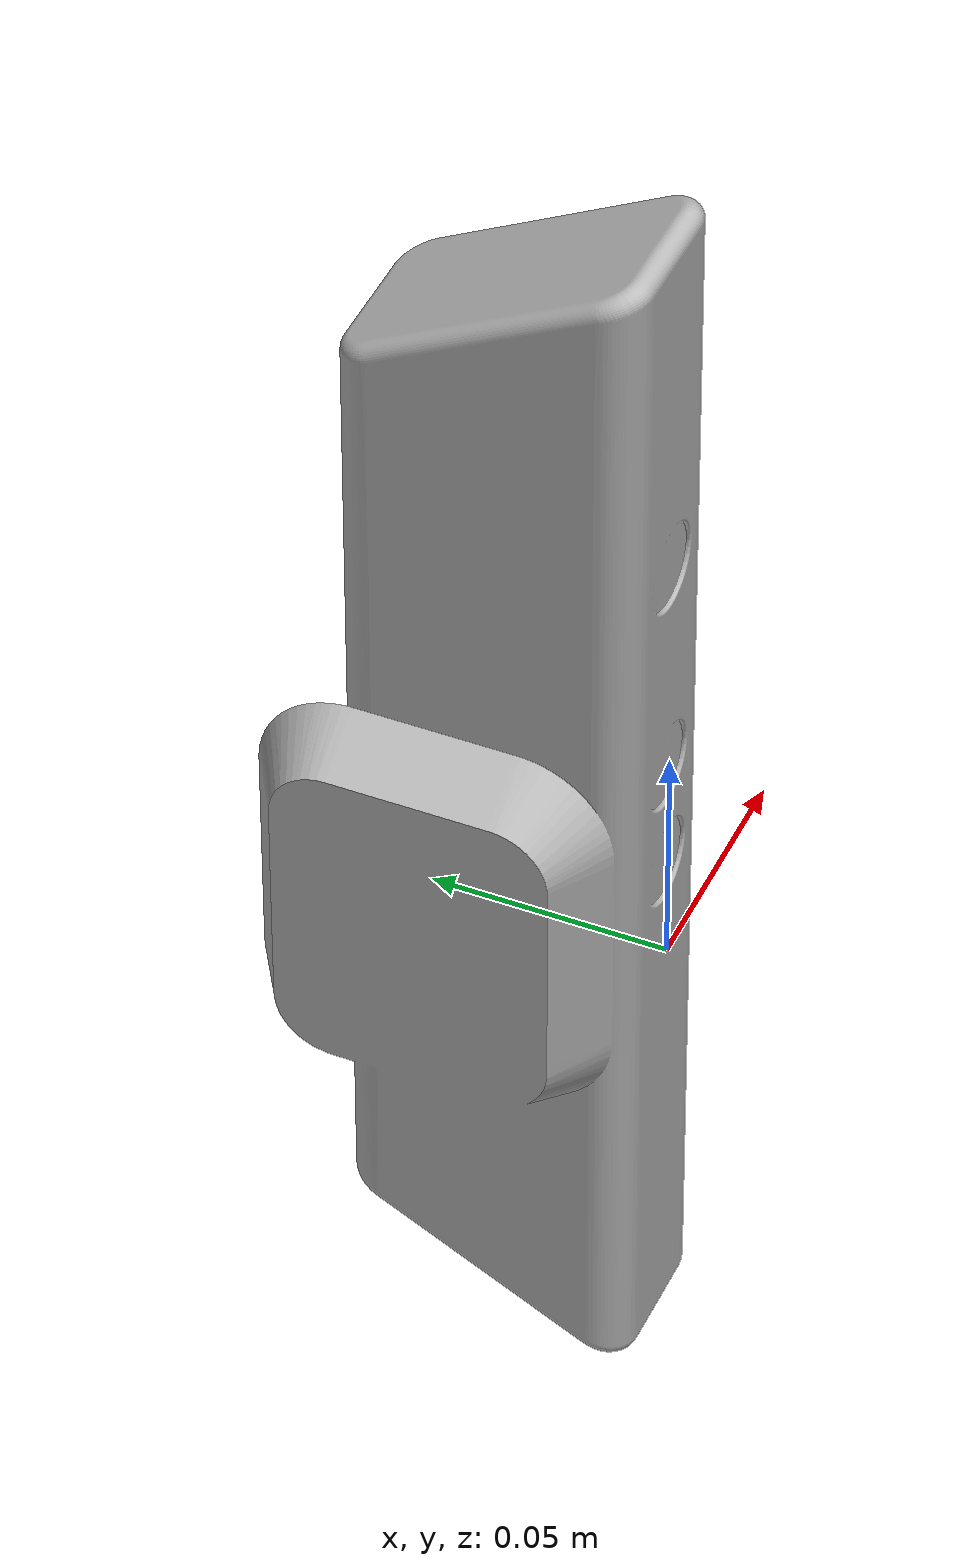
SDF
<?xml version="1.0" ?>
<sdf version="1.5">
  <model name="bowser_depthcam">
    <gravity>false</gravity>
    <!-- this pose tag sets orientation of the tf frame i.e. how the image appears in rviz -->
    <pose>0 0 0.036 -1.5708 0 -1.5708</pose>
    <link name="dc_link">
      <inertial>
        <mass>0.1</mass>
      </inertial>
      <collision name="collision">
        <geometry>
          <box>
            <size>0.073000 0.276000 0.072000</size>
          </box>
        </geometry>
      </collision>
      <visual name="visual">
        <geometry>
          <mesh>
            <uri>model://kinect/meshes/kinect.dae</uri>
          </mesh>
        </geometry>
      </visual>
      <sensor name="camera" type="depth">
        <update_rate>40</update_rate>
        <camera>
          <horizontal_fov>1.047198</horizontal_fov>
          <image>
            <width>640</width>
            <height>480</height>
            <format>R8G8B8</format>
          </image>
          <clip>
            <near>0.05</near>
            <far>10</far>
          </clip>
        </camera>

        <plugin name="camera_plugin" filename="libgazebo_ros_openni_kinect.so">
          <robotNamespace></robotNamespace>
          <baseline>0.0</baseline>
          <alwaysOn>true</alwaysOn>
          <updateRate>0.0</updateRate>
          <cameraName>camera_ir</cameraName>
          <imageTopicName>/depth_camera/color/image_raw</imageTopicName>
          <cameraInfoTopicName>/depth_camera/color/camera_info</cameraInfoTopicName>
          <depthImageTopicName>/depth_camera/depth/image_raw</depthImageTopicName>
          <depthImageCameraInfoTopicName>/depth_camera/depth/camera_info</depthImageCameraInfoTopicName>
          <pointCloudTopicName>/depth_camera/depth/points</pointCloudTopicName>
          <frameName>bowser_depthcam/dc_link</frameName>
          <pointCloudCutoff>0</pointCloudCutoff>
          <pointCloudCutoffMax>10.0</pointCloudCutoffMax>
          <distortionK1>0</distortionK1>
          <distortionK2>0</distortionK2>
          <distortionK3>0</distortionK3>
          <distortionT1>0</distortionT1>
          <distortionT2>0</distortionT2>
          <CxPrime>0</CxPrime>
          <Cx>0</Cx>
          <Cy>0</Cy>
          <focalLength>0</focalLength>
          <hackBaseline>0</hackBaseline>
        </plugin>
      </sensor>
    </link>
  </model>
</sdf>
